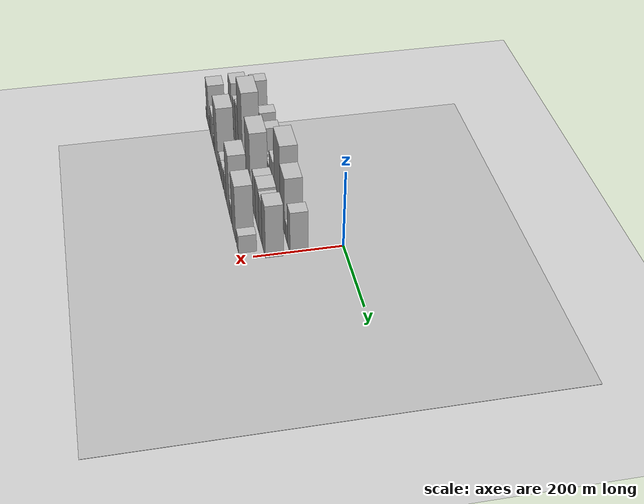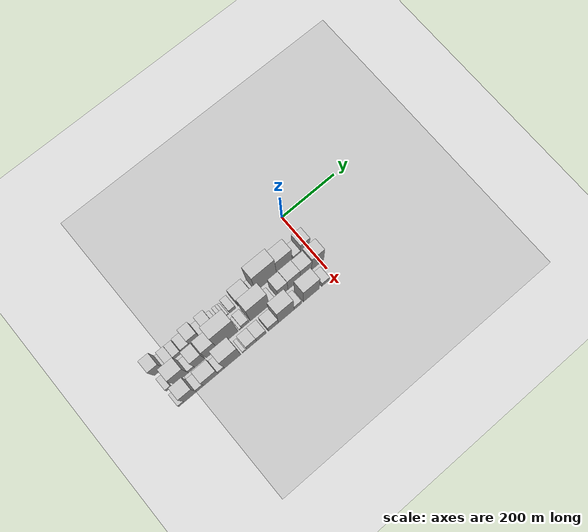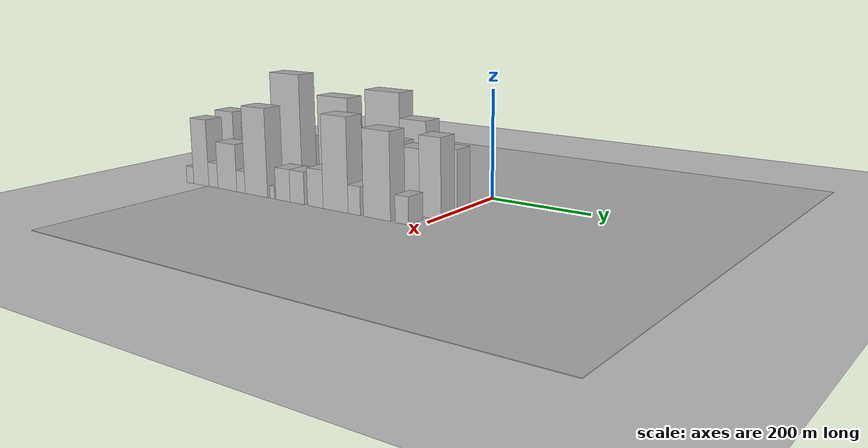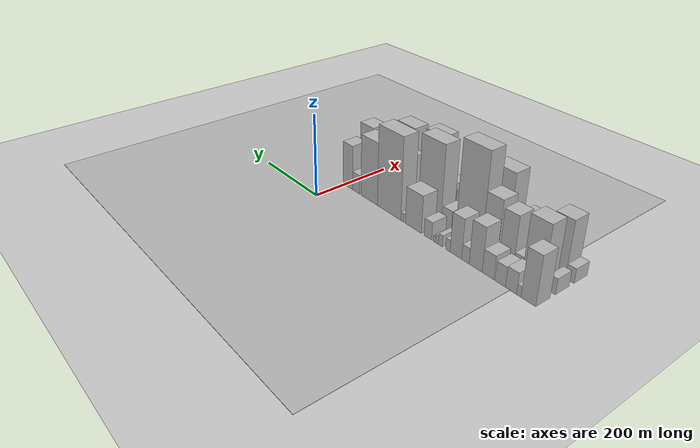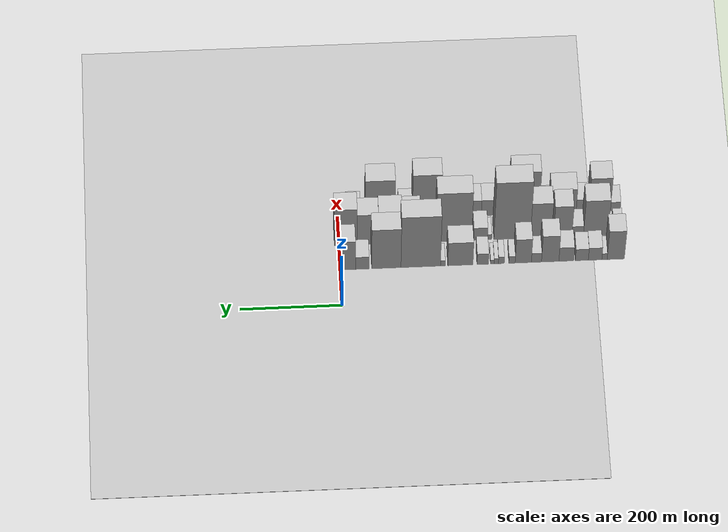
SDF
<sdf version="1.6">
 <world name="default">
  <include><name>ground_plane_1</name><uri>model://HANNAS_ground_plane</uri></include>
  <include>
   <name>ground_plane_2</name>
   <uri>model://HANNAS_ground_plane</uri>
   <pose>100 0 0  0 0 0</pose>
  </include>
  <model name="building_1">
   <static>1</static>
   <pose>100.0000 -543.0279 0 0.000000 0.000000 0.000000</pose>
   <link name="link">
    <pose>0 0 55.50 0 0 0</pose>
    <collision name="collision"><geometry><box><size>40.0000 33.9441 111.0000</size></box></geometry></collision>
    <visual name="visual">
     <cast_shadows>0</cast_shadows>
     <geometry><box><size>40.0000 33.9441 111.0000</size></box></geometry>
     <material>
      <script>
       <uri>model://HANNAS_wall/materials/scripts</uri>
       <uri>model://HANNAS_wall/materials/textures</uri>
       <name>vrc/HANNAS_wall</name>
      </script>
     </material>
    </visual>
   </link>
  </model>
  <model name="building_2">
   <static>1</static>
   <pose>100.0000 -520.8618 0 0.000000 0.000000 0.000000</pose>
   <link name="link">
    <pose>0 0 12.00 0 0 0</pose>
    <collision name="collision"><geometry><box><size>40.0000 10.3882 24.0000</size></box></geometry></collision>
    <visual name="visual">
     <cast_shadows>0</cast_shadows>
     <geometry><box><size>40.0000 10.3882 24.0000</size></box></geometry>
     <material>
      <script>
       <uri>model://HANNAS_wall/materials/scripts</uri>
       <uri>model://HANNAS_wall/materials/textures</uri>
       <name>vrc/HANNAS_wall</name>
      </script>
     </material>
    </visual>
   </link>
  </model>
  <model name="building_3">
   <static>1</static>
   <pose>100.0000 -502.2788 0 0.000000 0.000000 0.000000</pose>
   <link name="link">
    <pose>0 0 24.00 0 0 0</pose>
    <collision name="collision"><geometry><box><size>40.0000 26.7778 48.0000</size></box></geometry></collision>
    <visual name="visual">
     <cast_shadows>0</cast_shadows>
     <geometry><box><size>40.0000 26.7778 48.0000</size></box></geometry>
     <material>
      <script>
       <uri>model://HANNAS_wall/materials/scripts</uri>
       <uri>model://HANNAS_wall/materials/textures</uri>
       <name>vrc/HANNAS_wall</name>
      </script>
     </material>
    </visual>
   </link>
  </model>
  <model name="building_4">
   <static>1</static>
   <pose>100.0000 -476.0945 0 0.000000 0.000000 0.000000</pose>
   <link name="link">
    <pose>0 0 22.50 0 0 0</pose>
    <collision name="collision"><geometry><box><size>40.0000 25.5906 45.0000</size></box></geometry></collision>
    <visual name="visual">
     <cast_shadows>0</cast_shadows>
     <geometry><box><size>40.0000 25.5906 45.0000</size></box></geometry>
     <material>
      <script>
       <uri>model://HANNAS_wall/materials/scripts</uri>
       <uri>model://HANNAS_wall/materials/textures</uri>
       <name>vrc/HANNAS_wall</name>
      </script>
     </material>
    </visual>
   </link>
  </model>
  <model name="building_5">
   <static>1</static>
   <pose>100.0000 -445.5169 0 0.000000 0.000000 0.000000</pose>
   <link name="link">
    <pose>0 0 27.00 0 0 0</pose>
    <collision name="collision"><geometry><box><size>40.0000 29.5647 54.0000</size></box></geometry></collision>
    <visual name="visual">
     <cast_shadows>0</cast_shadows>
     <geometry><box><size>40.0000 29.5647 54.0000</size></box></geometry>
     <material>
      <script>
       <uri>model://HANNAS_wall/materials/scripts</uri>
       <uri>model://HANNAS_wall/materials/textures</uri>
       <name>vrc/HANNAS_wall</name>
      </script>
     </material>
    </visual>
   </link>
  </model>
  <model name="building_6">
   <static>1</static>
   <pose>100.0000 -413.5826 0 0.000000 0.000000 0.000000</pose>
   <link name="link">
    <pose>0 0 51.00 0 0 0</pose>
    <collision name="collision"><geometry><box><size>40.0000 34.3039 102.0000</size></box></geometry></collision>
    <visual name="visual">
     <cast_shadows>0</cast_shadows>
     <geometry><box><size>40.0000 34.3039 102.0000</size></box></geometry>
     <material>
      <script>
       <uri>model://HANNAS_wall/materials/scripts</uri>
       <uri>model://HANNAS_wall/materials/textures</uri>
       <name>vrc/HANNAS_wall</name>
      </script>
     </material>
    </visual>
   </link>
  </model>
  <model name="building_7">
   <static>1</static>
   <pose>100.0000 -386.4465 0 0.000000 0.000000 0.000000</pose>
   <link name="link">
    <pose>0 0 18.00 0 0 0</pose>
    <collision name="collision"><geometry><box><size>40.0000 19.9681 36.0000</size></box></geometry></collision>
    <visual name="visual">
     <cast_shadows>0</cast_shadows>
     <geometry><box><size>40.0000 19.9681 36.0000</size></box></geometry>
     <material>
      <script>
       <uri>model://HANNAS_wall/materials/scripts</uri>
       <uri>model://HANNAS_wall/materials/textures</uri>
       <name>vrc/HANNAS_wall</name>
      </script>
     </material>
    </visual>
   </link>
  </model>
  <model name="building_8">
   <static>1</static>
   <pose>100.0000 -360.4686 0 0.000000 0.000000 0.000000</pose>
   <link name="link">
    <pose>0 0 46.50 0 0 0</pose>
    <collision name="collision"><geometry><box><size>40.0000 31.9877 93.0000</size></box></geometry></collision>
    <visual name="visual">
     <cast_shadows>0</cast_shadows>
     <geometry><box><size>40.0000 31.9877 93.0000</size></box></geometry>
     <material>
      <script>
       <uri>model://HANNAS_wall/materials/scripts</uri>
       <uri>model://HANNAS_wall/materials/textures</uri>
       <name>vrc/HANNAS_wall</name>
      </script>
     </material>
    </visual>
   </link>
  </model>
  <model name="building_9">
   <static>1</static>
   <pose>100.0000 -338.2594 0 0.000000 0.000000 0.000000</pose>
   <link name="link">
    <pose>0 0 13.50 0 0 0</pose>
    <collision name="collision"><geometry><box><size>40.0000 12.4307 27.0000</size></box></geometry></collision>
    <visual name="visual">
     <cast_shadows>0</cast_shadows>
     <geometry><box><size>40.0000 12.4307 27.0000</size></box></geometry>
     <material>
      <script>
       <uri>model://HANNAS_wall/materials/scripts</uri>
       <uri>model://HANNAS_wall/materials/textures</uri>
       <name>vrc/HANNAS_wall</name>
      </script>
     </material>
    </visual>
   </link>
  </model>
  <model name="building_10">
   <static>1</static>
   <pose>100.0000 -317.2501 0 0.000000 0.000000 0.000000</pose>
   <link name="link">
    <pose>0 0 13.50 0 0 0</pose>
    <collision name="collision"><geometry><box><size>40.0000 11.5879 27.0000</size></box></geometry></collision>
    <visual name="visual">
     <cast_shadows>0</cast_shadows>
     <geometry><box><size>40.0000 11.5879 27.0000</size></box></geometry>
     <material>
      <script>
       <uri>model://HANNAS_wall/materials/scripts</uri>
       <uri>model://HANNAS_wall/materials/textures</uri>
       <name>vrc/HANNAS_wall</name>
      </script>
     </material>
    </visual>
   </link>
  </model>
  <model name="building_11">
   <static>1</static>
   <pose>100.0000 -307.1854 0 0.000000 0.000000 0.000000</pose>
   <link name="link">
    <pose>0 0 10.50 0 0 0</pose>
    <collision name="collision"><geometry><box><size>40.0000 8.5415 21.0000</size></box></geometry></collision>
    <visual name="visual">
     <cast_shadows>0</cast_shadows>
     <geometry><box><size>40.0000 8.5415 21.0000</size></box></geometry>
     <material>
      <script>
       <uri>model://HANNAS_wall/materials/scripts</uri>
       <uri>model://HANNAS_wall/materials/textures</uri>
       <name>vrc/HANNAS_wall</name>
      </script>
     </material>
    </visual>
   </link>
  </model>
  <model name="building_12">
   <static>1</static>
   <pose>100.0000 -299.3905 0 0.000000 0.000000 0.000000</pose>
   <link name="link">
    <pose>0 0 7.50 0 0 0</pose>
    <collision name="collision"><geometry><box><size>40.0000 7.0482 15.0000</size></box></geometry></collision>
    <visual name="visual">
     <cast_shadows>0</cast_shadows>
     <geometry><box><size>40.0000 7.0482 15.0000</size></box></geometry>
     <material>
      <script>
       <uri>model://HANNAS_wall/materials/scripts</uri>
       <uri>model://HANNAS_wall/materials/textures</uri>
       <name>vrc/HANNAS_wall</name>
      </script>
     </material>
    </visual>
   </link>
  </model>
  <model name="building_13">
   <static>1</static>
   <pose>100.0000 -280.5441 0 0.000000 0.000000 0.000000</pose>
   <link name="link">
    <pose>0 0 21.00 0 0 0</pose>
    <collision name="collision"><geometry><box><size>40.0000 22.6448 42.0000</size></box></geometry></collision>
    <visual name="visual">
     <cast_shadows>0</cast_shadows>
     <geometry><box><size>40.0000 22.6448 42.0000</size></box></geometry>
     <material>
      <script>
       <uri>model://HANNAS_wall/materials/scripts</uri>
       <uri>model://HANNAS_wall/materials/textures</uri>
       <name>vrc/HANNAS_wall</name>
      </script>
     </material>
    </visual>
   </link>
  </model>
  <model name="building_14">
   <static>1</static>
   <pose>100.0000 -236.3965 0 0.000000 0.000000 0.000000</pose>
   <link name="link">
    <pose>0 0 45.00 0 0 0</pose>
    <collision name="collision"><geometry><box><size>40.0000 49.6503 90.0000</size></box></geometry></collision>
    <visual name="visual">
     <cast_shadows>0</cast_shadows>
     <geometry><box><size>40.0000 49.6503 90.0000</size></box></geometry>
     <material>
      <script>
       <uri>model://HANNAS_wall/materials/scripts</uri>
       <uri>model://HANNAS_wall/materials/textures</uri>
       <name>vrc/HANNAS_wall</name>
      </script>
     </material>
    </visual>
   </link>
  </model>
  <model name="building_15">
   <static>1</static>
   <pose>100.0000 -201.8765 0 0.000000 0.000000 0.000000</pose>
   <link name="link">
    <pose>0 0 10.50 0 0 0</pose>
    <collision name="collision"><geometry><box><size>40.0000 9.3897 21.0000</size></box></geometry></collision>
    <visual name="visual">
     <cast_shadows>0</cast_shadows>
     <geometry><box><size>40.0000 9.3897 21.0000</size></box></geometry>
     <material>
      <script>
       <uri>model://HANNAS_wall/materials/scripts</uri>
       <uri>model://HANNAS_wall/materials/textures</uri>
       <name>vrc/HANNAS_wall</name>
      </script>
     </material>
    </visual>
   </link>
  </model>
  <model name="building_16">
   <static>1</static>
   <pose>100.0000 -158.2002 0 0.000000 0.000000 0.000000</pose>
   <link name="link">
    <pose>0 0 99.00 0 0 0</pose>
    <collision name="collision"><geometry><box><size>40.0000 77.9629 198.0000</size></box></geometry></collision>
    <visual name="visual">
     <cast_shadows>0</cast_shadows>
     <geometry><box><size>40.0000 77.9629 198.0000</size></box></geometry>
     <material>
      <script>
       <uri>model://HANNAS_wall/materials/scripts</uri>
       <uri>model://HANNAS_wall/materials/textures</uri>
       <name>vrc/HANNAS_wall</name>
      </script>
     </material>
    </visual>
   </link>
  </model>
  <model name="building_17">
   <static>1</static>
   <pose>100.0000 -90.4216 0 0.000000 0.000000 0.000000</pose>
   <link name="link">
    <pose>0 0 76.50 0 0 0</pose>
    <collision name="collision"><geometry><box><size>40.0000 57.5943 153.0000</size></box></geometry></collision>
    <visual name="visual">
     <cast_shadows>0</cast_shadows>
     <geometry><box><size>40.0000 57.5943 153.0000</size></box></geometry>
     <material>
      <script>
       <uri>model://HANNAS_wall/materials/scripts</uri>
       <uri>model://HANNAS_wall/materials/textures</uri>
       <name>vrc/HANNAS_wall</name>
      </script>
     </material>
    </visual>
   </link>
  </model>
  <model name="building_18">
   <static>1</static>
   <pose>100.0000 -43.2304 0 0.000000 0.000000 0.000000</pose>
   <link name="link">
    <pose>0 0 24.00 0 0 0</pose>
    <collision name="collision"><geometry><box><size>40.0000 26.7879 48.0000</size></box></geometry></collision>
    <visual name="visual">
     <cast_shadows>0</cast_shadows>
     <geometry><box><size>40.0000 26.7879 48.0000</size></box></geometry>
     <material>
      <script>
       <uri>model://HANNAS_wall/materials/scripts</uri>
       <uri>model://HANNAS_wall/materials/textures</uri>
       <name>vrc/HANNAS_wall</name>
      </script>
     </material>
    </visual>
   </link>
  </model>
  <model name="building_19">
   <static>1</static>
   <pose>100.0000 -12.8606 0 0.000000 0.000000 0.000000</pose>
   <link name="link">
    <pose>0 0 55.50 0 0 0</pose>
    <collision name="collision"><geometry><box><size>40.0000 33.9517 111.0000</size></box></geometry></collision>
    <visual name="visual">
     <cast_shadows>0</cast_shadows>
     <geometry><box><size>40.0000 33.9517 111.0000</size></box></geometry>
     <material>
      <script>
       <uri>model://HANNAS_wall/materials/scripts</uri>
       <uri>model://HANNAS_wall/materials/textures</uri>
       <name>vrc/HANNAS_wall</name>
      </script>
     </material>
    </visual>
   </link>
  </model>
  <model name="building_38">
   <static>1</static>
   <pose>155.0000 -550.9318 0 0.000000 0.000000 0.000000</pose>
   <link name="link">
    <pose>0 0 18.00 0 0 0</pose>
    <collision name="collision"><geometry><box><size>40.0000 18.1365 36.0000</size></box></geometry></collision>
    <visual name="visual">
     <cast_shadows>0</cast_shadows>
     <geometry><box><size>40.0000 18.1365 36.0000</size></box></geometry>
     <material>
      <script>
       <uri>model://HANNAS_wall/materials/scripts</uri>
       <uri>model://HANNAS_wall/materials/textures</uri>
       <name>vrc/HANNAS_wall</name>
      </script>
     </material>
    </visual>
   </link>
  </model>
  <model name="building_39">
   <static>1</static>
   <pose>155.0000 -507.3728 0 0.000000 0.000000 0.000000</pose>
   <link name="link">
    <pose>0 0 69.00 0 0 0</pose>
    <collision name="collision"><geometry><box><size>40.0000 48.9813 138.0000</size></box></geometry></collision>
    <visual name="visual">
     <cast_shadows>0</cast_shadows>
     <geometry><box><size>40.0000 48.9813 138.0000</size></box></geometry>
     <material>
      <script>
       <uri>model://HANNAS_wall/materials/scripts</uri>
       <uri>model://HANNAS_wall/materials/textures</uri>
       <name>vrc/HANNAS_wall</name>
      </script>
     </material>
    </visual>
   </link>
  </model>
  <model name="building_40">
   <static>1</static>
   <pose>155.0000 -471.4999 0 0.000000 0.000000 0.000000</pose>
   <link name="link">
    <pose>0 0 19.50 0 0 0</pose>
    <collision name="collision"><geometry><box><size>40.0000 22.7645 39.0000</size></box></geometry></collision>
    <visual name="visual">
     <cast_shadows>0</cast_shadows>
     <geometry><box><size>40.0000 22.7645 39.0000</size></box></geometry>
     <material>
      <script>
       <uri>model://HANNAS_wall/materials/scripts</uri>
       <uri>model://HANNAS_wall/materials/textures</uri>
       <name>vrc/HANNAS_wall</name>
      </script>
     </material>
    </visual>
   </link>
  </model>
  <model name="building_41">
   <static>1</static>
   <pose>155.0000 -441.9131 0 0.000000 0.000000 0.000000</pose>
   <link name="link">
    <pose>0 0 60.00 0 0 0</pose>
    <collision name="collision"><geometry><box><size>40.0000 36.4091 120.0000</size></box></geometry></collision>
    <visual name="visual">
     <cast_shadows>0</cast_shadows>
     <geometry><box><size>40.0000 36.4091 120.0000</size></box></geometry>
     <material>
      <script>
       <uri>model://HANNAS_wall/materials/scripts</uri>
       <uri>model://HANNAS_wall/materials/textures</uri>
       <name>vrc/HANNAS_wall</name>
      </script>
     </material>
    </visual>
   </link>
  </model>
  <model name="building_42">
   <static>1</static>
   <pose>155.0000 -398.8538 0 0.000000 0.000000 0.000000</pose>
   <link name="link">
    <pose>0 0 67.50 0 0 0</pose>
    <collision name="collision"><geometry><box><size>40.0000 41.7096 135.0000</size></box></geometry></collision>
    <visual name="visual">
     <cast_shadows>0</cast_shadows>
     <geometry><box><size>40.0000 41.7096 135.0000</size></box></geometry>
     <material>
      <script>
       <uri>model://HANNAS_wall/materials/scripts</uri>
       <uri>model://HANNAS_wall/materials/textures</uri>
       <name>vrc/HANNAS_wall</name>
      </script>
     </material>
    </visual>
   </link>
  </model>
  <model name="building_43">
   <static>1</static>
   <pose>155.0000 -341.8373 0 0.000000 0.000000 0.000000</pose>
   <link name="link">
    <pose>0 0 111.00 0 0 0</pose>
    <collision name="collision"><geometry><box><size>40.0000 72.3234 222.0000</size></box></geometry></collision>
    <visual name="visual">
     <cast_shadows>0</cast_shadows>
     <geometry><box><size>40.0000 72.3234 222.0000</size></box></geometry>
     <material>
      <script>
       <uri>model://HANNAS_wall/materials/scripts</uri>
       <uri>model://HANNAS_wall/materials/textures</uri>
       <name>vrc/HANNAS_wall</name>
      </script>
     </material>
    </visual>
   </link>
  </model>
  <model name="building_44">
   <static>1</static>
   <pose>155.0000 -297.4022 0 0.000000 0.000000 0.000000</pose>
   <link name="link">
    <pose>0 0 10.50 0 0 0</pose>
    <collision name="collision"><geometry><box><size>40.0000 8.5468 21.0000</size></box></geometry></collision>
    <visual name="visual">
     <cast_shadows>0</cast_shadows>
     <geometry><box><size>40.0000 8.5468 21.0000</size></box></geometry>
     <material>
      <script>
       <uri>model://HANNAS_wall/materials/scripts</uri>
       <uri>model://HANNAS_wall/materials/textures</uri>
       <name>vrc/HANNAS_wall</name>
      </script>
     </material>
    </visual>
   </link>
  </model>
  <model name="building_45">
   <static>1</static>
   <pose>155.0000 -279.4215 0 0.000000 0.000000 0.000000</pose>
   <link name="link">
    <pose>0 0 24.00 0 0 0</pose>
    <collision name="collision"><geometry><box><size>40.0000 27.4146 48.0000</size></box></geometry></collision>
    <visual name="visual">
     <cast_shadows>0</cast_shadows>
     <geometry><box><size>40.0000 27.4146 48.0000</size></box></geometry>
     <material>
      <script>
       <uri>model://HANNAS_wall/materials/scripts</uri>
       <uri>model://HANNAS_wall/materials/textures</uri>
       <name>vrc/HANNAS_wall</name>
      </script>
     </material>
    </visual>
   </link>
  </model>
  <model name="building_46">
   <static>1</static>
   <pose>155.0000 -226.7624 0 0.000000 0.000000 0.000000</pose>
   <link name="link">
    <pose>0 0 94.50 0 0 0</pose>
    <collision name="collision"><geometry><box><size>40.0000 69.9036 189.0000</size></box></geometry></collision>
    <visual name="visual">
     <cast_shadows>0</cast_shadows>
     <geometry><box><size>40.0000 69.9036 189.0000</size></box></geometry>
     <material>
      <script>
       <uri>model://HANNAS_wall/materials/scripts</uri>
       <uri>model://HANNAS_wall/materials/textures</uri>
       <name>vrc/HANNAS_wall</name>
      </script>
     </material>
    </visual>
   </link>
  </model>
  <model name="building_47">
   <static>1</static>
   <pose>155.0000 -180.9724 0 0.000000 0.000000 0.000000</pose>
   <link name="link">
    <pose>0 0 19.50 0 0 0</pose>
    <collision name="collision"><geometry><box><size>40.0000 21.6764 39.0000</size></box></geometry></collision>
    <visual name="visual">
     <cast_shadows>0</cast_shadows>
     <geometry><box><size>40.0000 21.6764 39.0000</size></box></geometry>
     <material>
      <script>
       <uri>model://HANNAS_wall/materials/scripts</uri>
       <uri>model://HANNAS_wall/materials/textures</uri>
       <name>vrc/HANNAS_wall</name>
      </script>
     </material>
    </visual>
   </link>
  </model>
  <model name="building_48">
   <static>1</static>
   <pose>155.0000 -141.9574 0 0.000000 0.000000 0.000000</pose>
   <link name="link">
    <pose>0 0 58.50 0 0 0</pose>
    <collision name="collision"><geometry><box><size>40.0000 36.3535 117.0000</size></box></geometry></collision>
    <visual name="visual">
     <cast_shadows>0</cast_shadows>
     <geometry><box><size>40.0000 36.3535 117.0000</size></box></geometry>
     <material>
      <script>
       <uri>model://HANNAS_wall/materials/scripts</uri>
       <uri>model://HANNAS_wall/materials/textures</uri>
       <name>vrc/HANNAS_wall</name>
      </script>
     </material>
    </visual>
   </link>
  </model>
  <model name="building_49">
   <static>1</static>
   <pose>155.0000 -100.5541 0 0.000000 0.000000 0.000000</pose>
   <link name="link">
    <pose>0 0 61.50 0 0 0</pose>
    <collision name="collision"><geometry><box><size>40.0000 46.4531 123.0000</size></box></geometry></collision>
    <visual name="visual">
     <cast_shadows>0</cast_shadows>
     <geometry><box><size>40.0000 46.4531 123.0000</size></box></geometry>
     <material>
      <script>
       <uri>model://HANNAS_wall/materials/scripts</uri>
       <uri>model://HANNAS_wall/materials/textures</uri>
       <name>vrc/HANNAS_wall</name>
      </script>
     </material>
    </visual>
   </link>
  </model>
  <model name="building_50">
   <static>1</static>
   <pose>155.0000 -56.4309 0 0.000000 0.000000 0.000000</pose>
   <link name="link">
    <pose>0 0 58.50 0 0 0</pose>
    <collision name="collision"><geometry><box><size>40.0000 41.7934 117.0000</size></box></geometry></collision>
    <visual name="visual">
     <cast_shadows>0</cast_shadows>
     <geometry><box><size>40.0000 41.7934 117.0000</size></box></geometry>
     <material>
      <script>
       <uri>model://HANNAS_wall/materials/scripts</uri>
       <uri>model://HANNAS_wall/materials/textures</uri>
       <name>vrc/HANNAS_wall</name>
      </script>
     </material>
    </visual>
   </link>
  </model>
  <model name="building_51">
   <static>1</static>
   <pose>155.0000 -12.9782 0 0.000000 0.000000 0.000000</pose>
   <link name="link">
    <pose>0 0 70.50 0 0 0</pose>
    <collision name="collision"><geometry><box><size>40.0000 45.1121 141.0000</size></box></geometry></collision>
    <visual name="visual">
     <cast_shadows>0</cast_shadows>
     <geometry><box><size>40.0000 45.1121 141.0000</size></box></geometry>
     <material>
      <script>
       <uri>model://HANNAS_wall/materials/scripts</uri>
       <uri>model://HANNAS_wall/materials/textures</uri>
       <name>vrc/HANNAS_wall</name>
      </script>
     </material>
    </visual>
   </link>
  </model>
  <model name="building_68">
   <static>1</static>
   <pose>210.0000 -550.1332 0 0.000000 0.000000 0.000000</pose>
   <link name="link">
    <pose>0 0 16.50 0 0 0</pose>
    <collision name="collision"><geometry><box><size>40.0000 19.7337 33.0000</size></box></geometry></collision>
    <visual name="visual">
     <cast_shadows>0</cast_shadows>
     <geometry><box><size>40.0000 19.7337 33.0000</size></box></geometry>
     <material>
      <script>
       <uri>model://HANNAS_wall/materials/scripts</uri>
       <uri>model://HANNAS_wall/materials/textures</uri>
       <name>vrc/HANNAS_wall</name>
      </script>
     </material>
    </visual>
   </link>
  </model>
  <model name="building_69">
   <static>1</static>
   <pose>210.0000 -518.8377 0 0.000000 0.000000 0.000000</pose>
   <link name="link">
    <pose>0 0 64.50 0 0 0</pose>
    <collision name="collision"><geometry><box><size>40.0000 42.8572 129.0000</size></box></geometry></collision>
    <visual name="visual">
     <cast_shadows>0</cast_shadows>
     <geometry><box><size>40.0000 42.8572 129.0000</size></box></geometry>
     <material>
      <script>
       <uri>model://HANNAS_wall/materials/scripts</uri>
       <uri>model://HANNAS_wall/materials/textures</uri>
       <name>vrc/HANNAS_wall</name>
      </script>
     </material>
    </visual>
   </link>
  </model>
  <model name="building_70">
   <static>1</static>
   <pose>210.0000 -484.7917 0 0.000000 0.000000 0.000000</pose>
   <link name="link">
    <pose>0 0 24.00 0 0 0</pose>
    <collision name="collision"><geometry><box><size>40.0000 25.2348 48.0000</size></box></geometry></collision>
    <visual name="visual">
     <cast_shadows>0</cast_shadows>
     <geometry><box><size>40.0000 25.2348 48.0000</size></box></geometry>
     <material>
      <script>
       <uri>model://HANNAS_wall/materials/scripts</uri>
       <uri>model://HANNAS_wall/materials/textures</uri>
       <name>vrc/HANNAS_wall</name>
      </script>
     </material>
    </visual>
   </link>
  </model>
  <model name="building_71">
   <static>1</static>
   <pose>210.0000 -446.4865 0 0.000000 0.000000 0.000000</pose>
   <link name="link">
    <pose>0 0 45.00 0 0 0</pose>
    <collision name="collision"><geometry><box><size>40.0000 51.3755 90.0000</size></box></geometry></collision>
    <visual name="visual">
     <cast_shadows>0</cast_shadows>
     <geometry><box><size>40.0000 51.3755 90.0000</size></box></geometry>
     <material>
      <script>
       <uri>model://HANNAS_wall/materials/scripts</uri>
       <uri>model://HANNAS_wall/materials/textures</uri>
       <name>vrc/HANNAS_wall</name>
      </script>
     </material>
    </visual>
   </link>
  </model>
  <model name="building_72">
   <static>1</static>
   <pose>210.0000 -409.7741 0 0.000000 0.000000 0.000000</pose>
   <link name="link">
    <pose>0 0 21.00 0 0 0</pose>
    <collision name="collision"><geometry><box><size>40.0000 22.0493 42.0000</size></box></geometry></collision>
    <visual name="visual">
     <cast_shadows>0</cast_shadows>
     <geometry><box><size>40.0000 22.0493 42.0000</size></box></geometry>
     <material>
      <script>
       <uri>model://HANNAS_wall/materials/scripts</uri>
       <uri>model://HANNAS_wall/materials/textures</uri>
       <name>vrc/HANNAS_wall</name>
      </script>
     </material>
    </visual>
   </link>
  </model>
  <model name="building_73">
   <static>1</static>
   <pose>210.0000 -369.5769 0 0.000000 0.000000 0.000000</pose>
   <link name="link">
    <pose>0 0 82.50 0 0 0</pose>
    <collision name="collision"><geometry><box><size>40.0000 58.3451 165.0000</size></box></geometry></collision>
    <visual name="visual">
     <cast_shadows>0</cast_shadows>
     <geometry><box><size>40.0000 58.3451 165.0000</size></box></geometry>
     <material>
      <script>
       <uri>model://HANNAS_wall/materials/scripts</uri>
       <uri>model://HANNAS_wall/materials/textures</uri>
       <name>vrc/HANNAS_wall</name>
      </script>
     </material>
    </visual>
   </link>
  </model>
  <model name="building_74">
   <static>1</static>
   <pose>210.0000 -328.5815 0 0.000000 0.000000 0.000000</pose>
   <link name="link">
    <pose>0 0 12.00 0 0 0</pose>
    <collision name="collision"><geometry><box><size>40.0000 11.6456 24.0000</size></box></geometry></collision>
    <visual name="visual">
     <cast_shadows>0</cast_shadows>
     <geometry><box><size>40.0000 11.6456 24.0000</size></box></geometry>
     <material>
      <script>
       <uri>model://HANNAS_wall/materials/scripts</uri>
       <uri>model://HANNAS_wall/materials/textures</uri>
       <name>vrc/HANNAS_wall</name>
      </script>
     </material>
    </visual>
   </link>
  </model>
  <model name="building_75">
   <static>1</static>
   <pose>210.0000 -301.8585 0 0.000000 0.000000 0.000000</pose>
   <link name="link">
    <pose>0 0 30.00 0 0 0</pose>
    <collision name="collision"><geometry><box><size>40.0000 35.8005 60.0000</size></box></geometry></collision>
    <visual name="visual">
     <cast_shadows>0</cast_shadows>
     <geometry><box><size>40.0000 35.8005 60.0000</size></box></geometry>
     <material>
      <script>
       <uri>model://HANNAS_wall/materials/scripts</uri>
       <uri>model://HANNAS_wall/materials/textures</uri>
       <name>vrc/HANNAS_wall</name>
      </script>
     </material>
    </visual>
   </link>
  </model>
  <model name="building_76">
   <static>1</static>
   <pose>210.0000 -266.6783 0 0.000000 0.000000 0.000000</pose>
   <link name="link">
    <pose>0 0 30.00 0 0 0</pose>
    <collision name="collision"><geometry><box><size>40.0000 34.5599 60.0000</size></box></geometry></collision>
    <visual name="visual">
     <cast_shadows>0</cast_shadows>
     <geometry><box><size>40.0000 34.5599 60.0000</size></box></geometry>
     <material>
      <script>
       <uri>model://HANNAS_wall/materials/scripts</uri>
       <uri>model://HANNAS_wall/materials/textures</uri>
       <name>vrc/HANNAS_wall</name>
      </script>
     </material>
    </visual>
   </link>
  </model>
  <model name="building_77">
   <static>1</static>
   <pose>210.0000 -223.0939 0 0.000000 0.000000 0.000000</pose>
   <link name="link">
    <pose>0 0 34.50 0 0 0</pose>
    <collision name="collision"><geometry><box><size>40.0000 36.6089 69.0000</size></box></geometry></collision>
    <visual name="visual">
     <cast_shadows>0</cast_shadows>
     <geometry><box><size>40.0000 36.6089 69.0000</size></box></geometry>
     <material>
      <script>
       <uri>model://HANNAS_wall/materials/scripts</uri>
       <uri>model://HANNAS_wall/materials/textures</uri>
       <name>vrc/HANNAS_wall</name>
      </script>
     </material>
    </visual>
   </link>
  </model>
  <model name="building_78">
   <static>1</static>
   <pose>210.0000 -176.0861 0 0.000000 0.000000 0.000000</pose>
   <link name="link">
    <pose>0 0 84.00 0 0 0</pose>
    <collision name="collision"><geometry><box><size>40.0000 57.4068 168.0000</size></box></geometry></collision>
    <visual name="visual">
     <cast_shadows>0</cast_shadows>
     <geometry><box><size>40.0000 57.4068 168.0000</size></box></geometry>
     <material>
      <script>
       <uri>model://HANNAS_wall/materials/scripts</uri>
       <uri>model://HANNAS_wall/materials/textures</uri>
       <name>vrc/HANNAS_wall</name>
      </script>
     </material>
    </visual>
   </link>
  </model>
  <model name="building_79">
   <static>1</static>
   <pose>210.0000 -133.6789 0 0.000000 0.000000 0.000000</pose>
   <link name="link">
    <pose>0 0 25.50 0 0 0</pose>
    <collision name="collision"><geometry><box><size>40.0000 27.4076 51.0000</size></box></geometry></collision>
    <visual name="visual">
     <cast_shadows>0</cast_shadows>
     <geometry><box><size>40.0000 27.4076 51.0000</size></box></geometry>
     <material>
      <script>
       <uri>model://HANNAS_wall/materials/scripts</uri>
       <uri>model://HANNAS_wall/materials/textures</uri>
       <name>vrc/HANNAS_wall</name>
      </script>
     </material>
    </visual>
   </link>
  </model>
  <model name="building_80">
   <static>1</static>
   <pose>210.0000 -83.7499 0 0.000000 0.000000 0.000000</pose>
   <link name="link">
    <pose>0 0 76.50 0 0 0</pose>
    <collision name="collision"><geometry><box><size>40.0000 58.4505 153.0000</size></box></geometry></collision>
    <visual name="visual">
     <cast_shadows>0</cast_shadows>
     <geometry><box><size>40.0000 58.4505 153.0000</size></box></geometry>
     <material>
      <script>
       <uri>model://HANNAS_wall/materials/scripts</uri>
       <uri>model://HANNAS_wall/materials/textures</uri>
       <name>vrc/HANNAS_wall</name>
      </script>
     </material>
    </visual>
   </link>
  </model>
  <model name="building_81">
   <static>1</static>
   <pose>210.0000 -30.6038 0 0.000000 0.000000 0.000000</pose>
   <link name="link">
    <pose>0 0 24.00 0 0 0</pose>
    <collision name="collision"><geometry><box><size>40.0000 27.8416 48.0000</size></box></geometry></collision>
    <visual name="visual">
     <cast_shadows>0</cast_shadows>
     <geometry><box><size>40.0000 27.8416 48.0000</size></box></geometry>
     <material>
      <script>
       <uri>model://HANNAS_wall/materials/scripts</uri>
       <uri>model://HANNAS_wall/materials/textures</uri>
       <name>vrc/HANNAS_wall</name>
      </script>
     </material>
    </visual>
   </link>
  </model>
 </world>
</sdf>
